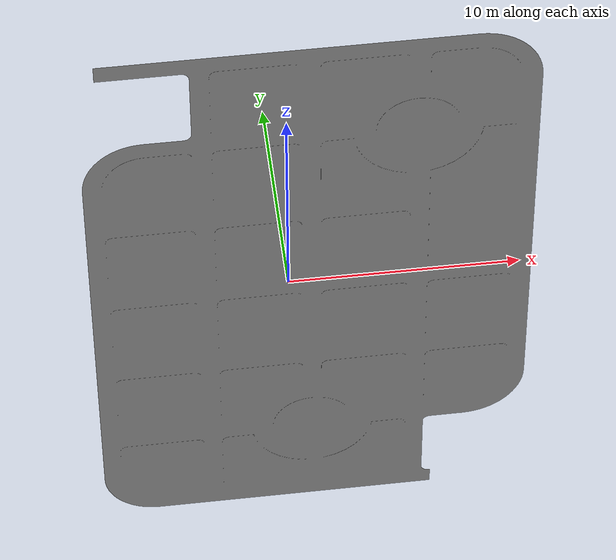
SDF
<?xml version='1.0'?>
<sdf version='1.6'>
  <model name='roscar_alto.SLDPRT'>
    <link name='roscar_alto'>
      <pose frame=''>0 0 0 0 -0 0</pose>
      <inertial>
        <pose frame=''>0 0 0.12423 0 -0 0</pose>
        <mass>0.1728</mass>
        <inertia>
          <ixx>0.00082546</ixx>
          <ixy>5.5204e-23</ixy>
          <ixz>-2.8152e-20</ixz>
          <iyy>0.00093797</iyy>
          <iyz>-5.34591e-20</iyz>
          <izz>0.0001316</izz>
        </inertia>
      </inertial>
      <collision name='cinves_city_collision'>
        <pose frame=''>0 0 0 1.5708 -0 0</pose>
        <geometry>
          <mesh>
            <scale>1 1 1</scale>
            <uri>model://cinves_city/meshes/cinves_city.dae</uri>
          </mesh>
        </geometry>
      </collision>
      <visual name='cinves_city_visual'>
        <pose frame=''>0 0 0 1.5708 -0 0</pose>
        <geometry>
          <mesh>
            <scale>1 1 1</scale>
            <uri>model://cinves_city/meshes/cinves_city.dae</uri>
          </mesh>
        </geometry>

				<material>
					<script>
            <uri>model://cinves_city/materials/scripts</uri>
            <uri>model://cinves_city/materials/textures</uri>
						<name>city</name>
					</script>
				</material>

      </visual>
    </link>
  </model>
</sdf>
